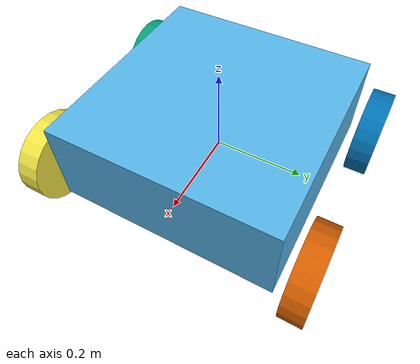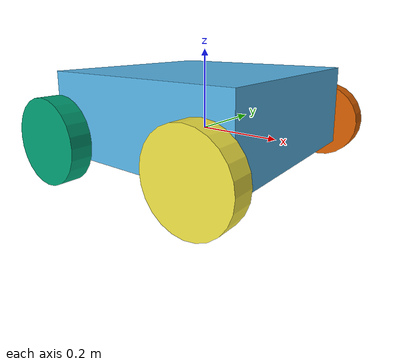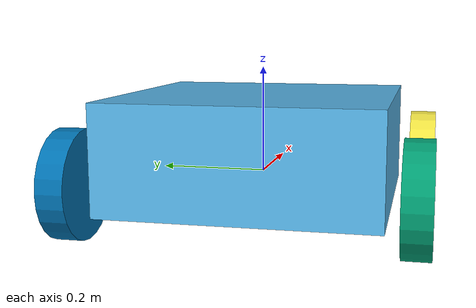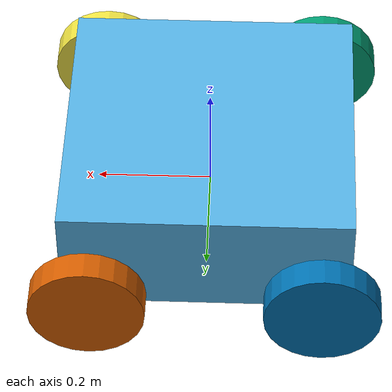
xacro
<?xml version='1.0'?>

<robot xmlns:xacro="http://www.ros.org/wiki/xacro">
	<xacro:property name="robot_chassis_mass" value="15" />
	<xacro:property name="robot_chassis_length" value="0.2" />
	<xacro:property name="robot_chassis_radius" value="0.25" />
	<xacro:property name="robot_caster_wheel_radius" value="0.05" />
	<xacro:property name="robot_caster_wheel_radius_collision" value="0.0499" />

	<xacro:property name="robot_wheel_mass" value="5" />
	<xacro:property name="robot_wheel_length" value="0.05" />
	<xacro:property name="robot_wheel_radius" value="0.1" />

	<link
		name="base_link">
	</link>

	<joint name="chassis_joint" type="fixed">
		<parent link="base_link" />
		<child link="chassis" />
		<origin xyz="0 0 0" rpy="0 0 0" />
	</joint>

	<!-- Make Chassis of Bot -->
	<link name="chassis">
		<pose>0 0 0.1 0 0 0</pose>

		<inertial>
			<mass value="${robot_chassis_mass}" />
			<origin xyz="0.0 0 0" rpy=" 0 0 0" />

			<inertia
				ixx="0.147116667" ixy="0" ixz="0"
				iyy="0.334951167" iyz="0"
				izz="0.3978345"
			/>
		</inertial>

		<collision name="collision">
			<origin xyz="0 0 0.05" rpy=" 0 0 0" />
			<geometry>
				<box size="0.5 0.5 0.2" />
			</geometry>
		</collision>

		<visual name="chassis_visual">
			<origin xyz="0 0 0.05" rpy=" 0 0 0" />
			<geometry>
				<box size="0.5 0.5 0.2" />
			</geometry>

		</visual>

	</link>

	<!-- Right Wheel Back -->
	<link name="right_rear_link">
		<inertial>
			<mass value="${robot_wheel_mass}" />
			<origin xyz="0 0 0" rpy="0 1.5707 1.5707" />
			<inertia
				ixx="0.1" ixy="0.0" ixz="0.0"
				iyy="0.1" iyz="0.0"
				izz="0.1"
			/>
		</inertial>

		<visual>
			<origin xyz="0 0 0" rpy="0 1.5707 1.5707" />
			<geometry>
				<cylinder radius="${robot_wheel_radius}" length="${robot_wheel_length}" />
			</geometry>
		</visual>

		<collision>
			<origin xyz="0 0 0" rpy="0 1.5707 1.5707" />
			<geometry>
				<cylinder radius="${robot_wheel_radius}" length="${robot_wheel_length}" />
			</geometry>
		</collision>

	</link>

	<!-- Right Wheel Front-->
	<link name="right_front_link">
		<inertial>
			<mass value="${robot_wheel_mass}" />
			<origin xyz="0 0 0" rpy="0 1.5707 1.5707" />
			<inertia
				ixx="0.1" ixy="0.0" ixz="0.0"
				iyy="0.1" iyz="0.0"
				izz="0.1"
			/>
		</inertial>

		<visual>
			<origin xyz="0 0 0" rpy="0 1.5707 1.5707" />
			<geometry>
				<cylinder radius="${robot_wheel_radius}" length="${robot_wheel_length}" />
			</geometry>
		</visual>

		<collision>
			<origin xyz="0 0 0" rpy="0 1.5707 1.5707" />
			<geometry>
				<cylinder radius="${robot_wheel_radius}" length="${robot_wheel_length}" />
			</geometry>
		</collision>

	</link>

	<!-- Left wheel Back-->
	<link name="left_rear_link">
		<inertial>
			<mass value="${robot_wheel_mass}" />
			<origin xyz="0 0 0" rpy="0 1.5707 1.5707" />
			<inertia
				ixx="0.1" ixy="0.0" ixz="0.0"
				iyy="0.1" iyz="0.0"
				izz="0.1"
			/>
		</inertial>

		<visual>
			<origin xyz="0 0 0" rpy="0 1.5707 1.5707" />
			<geometry>
				<cylinder radius="${robot_wheel_radius}" length="${robot_wheel_length}" />
			</geometry>
		</visual>

		<collision>
			<origin xyz="0 0 0" rpy="0 1.5707 1.5707" />
			<geometry>
				<cylinder radius="${robot_wheel_radius}" length="${robot_wheel_length}" />
			</geometry>
		</collision>

	</link>

	<!-- Left wheel Front-->
	<link name="left_front_link">
		<inertial>
			<mass value="${robot_wheel_mass}" />
			<origin xyz="0 0 0" rpy="0 1.5707 1.5707" />
			<inertia
				ixx="0.1" ixy="0.0" ixz="0.0"
				iyy="0.1" iyz="0.0"
				izz="0.1"
			/>
		</inertial>

		<visual>
			<origin xyz="0 0 0" rpy="0 1.5707 1.5707" />
			<geometry>
				<cylinder radius="${robot_wheel_radius}" length="${robot_wheel_length}" />
			</geometry>
		</visual>

		<collision>
			<origin xyz="0 0 0" rpy="0 1.5707 1.5707" />
			<geometry>
				<cylinder radius="${robot_wheel_radius}" length="${robot_wheel_length}" />
			</geometry>
		</collision>
	</link>

	<!-- Define Joints -->

	<!-- Right Wheel Joint Back-->
	<joint type="continuous" name="right_rear_joint">
		<origin xyz="-0.2 -0.30 0" rpy="0 0 0" />
		<parent link="chassis" />
		<child link="right_rear_link" />
		<axis xyz="0 1 0" rpy="0 0 0" />
		<limit effort="10000" velocity="1000" />
		<dynamics damping="1.0" friction="1.0" />
	</joint>

	<!-- Right Wheel Joint Front-->
	<joint type="continuous" name="right_front_joint">
		<origin xyz="0.2 -0.30 0" rpy="0 0 0" />
		<parent link="chassis" />
		<child link="right_front_link" />
		<axis xyz="0 1 0" rpy="0 0 0" />
		<limit effort="10000" velocity="1000" />
		<dynamics damping="1.0" friction="1.0" />
	</joint>

	<!-- Left Wheel Joint Back-->
	<joint type="continuous" name="left_rear_joint">
		<origin xyz="-0.2 0.30 0" rpy="0 0 0" />
		<parent link="chassis" />
		<child link="left_rear_link" />
		<axis xyz="0 1 0" rpy="0 0 0" />
		<limit effort="10000" velocity="1000" />
		<dynamics damping="1.0" friction="1.0" />
	</joint>

	<!-- Left Wheel Joint Front-->
	<joint type="continuous" name="left_front_joint">
		<origin xyz="0.2 0.30 0" rpy="0 0 0" />
		<parent link="chassis" />
		<child link="left_front_link" />
		<axis xyz="0 1 0" rpy="0 0 0" />
		<limit effort="10000" velocity="1000" />
		<dynamics damping="1.0" friction="1.0" />
	</joint>

</robot>
